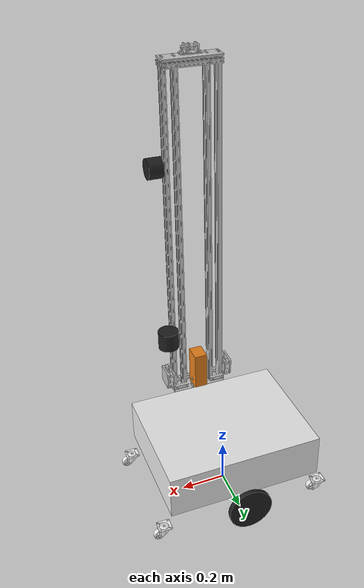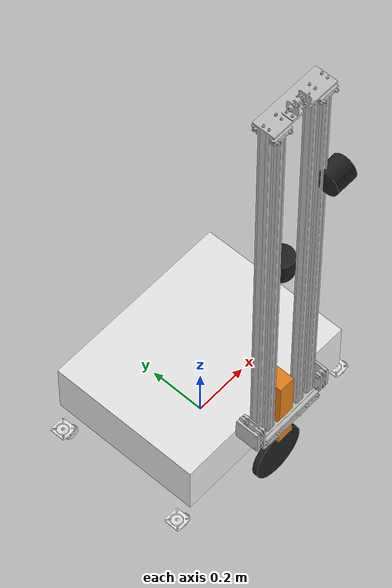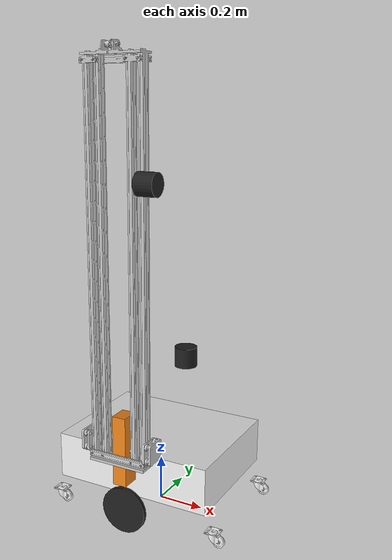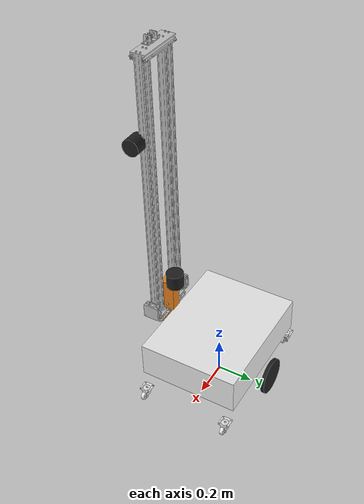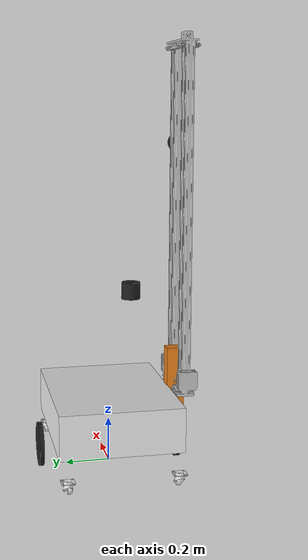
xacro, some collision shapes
<?xml version="1.0" ?>
<robot name="paint_bot" xmlns:xacro="http://ros.org/wiki/xacro">

    <!-- Args -->
    <xacro:arg name="sim" default="classic"/>
    <xacro:property name="sim" value="$(arg sim)"/>

    <xacro:arg name="attach_gantry" default="true"/>
    <xacro:arg name="attach_sensors" default="false"/>

    <!-- Include Modular URDF Files -->
    <xacro:include filename="$(find paint_bot_description)/urdf/paint_bot_color.xacro"/>
    <xacro:include filename="$(find paint_bot_description)/urdf/base.xacro"/>
    <xacro:include filename="$(find paint_bot_description)/urdf/diff_drive.xacro"/>
    <xacro:include filename="$(find paint_bot_description)/urdf/caster.xacro"/>
    <xacro:include filename="$(find paint_bot_description)/urdf/gantry.xacro"/>
    <xacro:include filename="$(find paint_bot_description)/urdf/paint_bot_gazebo.xacro"/>
    <xacro:include filename="$(find paint_bot_description)/urdf/paint_bot_transmission.xacro"/>
    <xacro:include filename="$(find paint_bot_description)/urdf/lidar.xacro"/>

    <!-- Instantiate Driven Wheels with firm ground contact -->
    <xacro:driven_wheel name="left"  parent="base_link" xyz="0 0.288 -0.010" rpy="0 0 0" y_reflect="1"/>
    <xacro:driven_wheel name="right" parent="base_link" xyz="0 -0.288 -0.010" rpy="0 0 0" y_reflect="-1"/>

    <!-- Instantiate Casters balanced at exact ground contact height -->
    <xacro:caster name="front_right" parent="base_link" plate_xyz="0.375 -0.243 -0.040" wheel_xyz="0.025 0 -0.040"/>
    <xacro:caster name="front_left"  parent="base_link" plate_xyz="0.375 0.243 -0.040"  wheel_xyz="0.025 0 -0.040"/>
    <xacro:caster name="rear_right"  parent="base_link" plate_xyz="-0.375 -0.243 -0.040" wheel_xyz="0.025 0 -0.040"/>
    <xacro:caster name="rear_left"   parent="base_link" plate_xyz="-0.375 0.243 -0.040"  wheel_xyz="0.025 0 -0.040"/>

    <!-- Instantiate Gantry (Prismatic height axis + spray gun) -->
    <xacro:if value="$(arg attach_gantry)">
        <xacro:gantry parent="base_link" xyz="0 -0.312 0.267" rpy="0 0 -1.5708"/>
    </xacro:if>

    <!-- Instantiate Sensors (IMU, Lidars, Depth Camera, Ultrasonics) -->
    <xacro:if value="$(arg attach_sensors)">
        <xacro:sensors parent="base_link"/>
    </xacro:if>

    <!-- Gazebo Transmission Integration -->
    <xacro:paint_bot_transmission
        left_wheel="left_wheel_joint"
        right_wheel="right_wheel_joint"
        height_paint_position="zAxis_joint"
        paint_spray_gun="wrist_joint"
       />

    <!-- Gazebo Classic Plugins for Painting Robot Simulation -->
    <gazebo>
        <!-- Differential Drive for Painting Robot Wheels -->
        <plugin name="diff_drive_controller" filename="libgazebo_ros_diff_drive.so">
            <update_rate>50</update_rate>
            <left_joint>left_wheel_joint</left_joint>
            <right_joint>right_wheel_joint</right_joint>
            <wheel_separation>0.576</wheel_separation>
            <wheel_diameter>0.20</wheel_diameter>
            <max_wheel_torque>500.0</max_wheel_torque>
            <max_wheel_acceleration>10.0</max_wheel_acceleration>
            <publish_odom>true</publish_odom>
            <publish_odom_tf>true</publish_odom_tf>
            <publish_wheel_tf>true</publish_wheel_tf>
            <odometry_frame>odom</odometry_frame>
            <robot_base_frame>base_footprint</robot_base_frame>
            <ros>
                <remapping>cmd_vel:=/paint_bot/cmd_vel</remapping>
                <remapping>odom:=/paint_bot/odom</remapping>
            </ros>
        </plugin>

        <!-- Joint State Publisher for all Painting Robot joints -->
        <plugin name="joint_state_publisher" filename="libgazebo_ros_joint_state_publisher.so">
            <update_rate>50</update_rate>
            <joint_name>left_wheel_joint</joint_name>
            <joint_name>right_wheel_joint</joint_name>
            <joint_name>extension_joint</joint_name>
            <joint_name>zAxis_joint</joint_name>
            <joint_name>wrist_joint</joint_name>
        </plugin>

        <!-- Prismatic Gantry Joint Pose Trajectory Controller -->
        <plugin name="gantry_pose_controller" filename="libgazebo_ros_joint_pose_trajectory.so">
            <update_rate>50</update_rate>
            <ros>
                <namespace>/paint_axis_controller</namespace>
                <remapping>set_joint_trajectory:=joint_trajectory</remapping>
            </ros>
        </plugin>
    </gazebo>

     <joint name="imu_joint" type="fixed">
        <parent link="base_link"/>
        <child link="imu_link"/>
        <origin xyz="0 0 0.01" rpy="0 0 0"/>
    </joint>

    <link name="imu_link">
        <visual>
            <geometry>
                <box size="0.01 0.01 0.01"/>
            </geometry>
            <material name="black"/>
        </visual>
    </link>

    <gazebo reference="imu_link">
        <sensor name="imu_sensor" type="imu">
            <always_on>true</always_on>
            <update_rate>50</update_rate>
            <imu>
                <angular_velocity>
                    <x><noise type="gaussian"><mean>0.0</mean><stddev>2e-4</stddev></noise></x>
                    <y><noise type="gaussian"><mean>0.0</mean><stddev>2e-4</stddev></noise></y>
                    <z><noise type="gaussian"><mean>0.0</mean><stddev>2e-4</stddev></noise></z>
                </angular_velocity>
                <linear_acceleration>
                    <x><noise type="gaussian"><mean>0.0</mean><stddev>1.7e-2</stddev></noise></x>
                    <y><noise type="gaussian"><mean>0.0</mean><stddev>1.7e-2</stddev></noise></y>
                    <z><noise type="gaussian"><mean>0.0</mean><stddev>1.7e-2</stddev></noise></z>
                </linear_acceleration>
            </imu>
            <plugin name="imu_plugin" filename="libgazebo_ros_imu_sensor.so">
                <ros>
                    <remapping>~/out:=imu/out</remapping>
                </ros>
                <initial_orientation_as_reference>false</initial_orientation_as_reference>
            </plugin>
        </sensor>
    </gazebo>

</robot>

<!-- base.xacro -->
<robot name="paint_bot" xmlns:xacro="http://ros.org/wiki/xacro">
    <!-- Base Footprint Link -->
    <link name="base_footprint"/>

    <!-- Base Footprint Joint -->
    <joint name="base_joint" type="fixed">
        <parent link="base_footprint"/>
        <child link="base_link"/>
        <origin xyz="0.0 0.0 0.11" rpy="0 0 0"/>
    </joint>

    <!-- Base Link -->
    <link name="base_link">
        <inertial>
            <!-- Adjusted Y COM (+0.025) to act as a virtual counterweight for the off-center gantry payload -->
            <origin xyz="-0.013481 0.025 0.19404"
                    rpy="0 0 0" />
            <mass value="50" />
            <inertia ixx="1.6079"
                    ixy="0.0030591"
                    ixz="0.06246"
                    iyy="1.7294"
                    iyz="-0.005081"
                    izz="2.6836" />
        </inertial>
        <visual>
            <origin xyz="0 0 0" rpy="0 0 0" />
            <geometry>
                <mesh filename="package://paint_bot_description/meshes/base_link.STL" />
            </geometry>
            <material name="white"/>
        </visual>
        <collision>
            <origin xyz="0 0 0.14" rpy="0 0 0"/>
            <geometry>
                <box size="0.7 0.55 0.20"/>
            </geometry>
        </collision>
    </link>

    <!-- Model Colors -->
    <!-- Base Link -->
    <gazebo reference="base_link">
        <material>Gazebo/White</material>
    </gazebo>
</robot>

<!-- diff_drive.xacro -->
<robot xmlns:xacro="http://www.ros.org/wiki/xacro">

    <xacro:macro name="driven_wheel" params="name parent xyz rpy y_reflect">

        <link name="${name}_wheel_link">
            <inertial>
                <!-- Y offset reflects left/right asymmetry -->
                <origin xyz="0.0 ${y_reflect * 0.025001} 0.0" rpy="0 0 0"/>
                <mass value="3"/>
                <!-- Physically realistic inertia values for 3kg wheel of 0.1m radius -->
                <inertia ixx="0.0075" ixy="0.0" ixz="0.0"
                         iyy="0.015" iyz="0.0"
                         izz="0.0075"/>
            </inertial>

            <visual>
                <origin xyz="0 ${y_reflect * 0.03} 0" rpy="${y_reflect * 1.5708} 0 0"/>
                <geometry>
                    <cylinder radius="0.10" length="0.02"/>
                </geometry>
                <material name="black"/>
            </visual>

            <!-- Sphere collision for stable physics simulation in Gazebo Classic ODE -->
            <collision>
                <origin xyz="0 0 0" rpy="0 0 0"/>
                <geometry>
                    <sphere radius="0.10"/>
                </geometry>
            </collision>
        </link>

        <joint name="${name}_wheel_joint" type="continuous">
            <origin xyz="${xyz}" rpy="${rpy}"/>
            <parent link="${parent}"/>
            <child link="${name}_wheel_link"/>
            <axis xyz="0 1 0"/>
            <dynamics damping="0.1" friction="0.0"/>
            <!-- Explicit effort limit (500.0 Nm) to prevent motor sluggishness in Gazebo Classic -->
            <limit effort="500.0" velocity="10.0"/>
        </joint>

        <!-- Gazebo properties for driven traction wheels -->
        <gazebo reference="${name}_wheel_link">
            <material>Gazebo/Black</material>
            <mu1>10.0</mu1>
            <mu2>10.0</mu2>
            <kp>1000000.0</kp>
            <kd>1.0</kd>
            <minDepth>0.001</minDepth>
            <maxVel>1.0</maxVel>
        </gazebo>

    </xacro:macro>

</robot>

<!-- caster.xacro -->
<robot xmlns:xacro="http://www.ros.org/wiki/xacro">

    <xacro:macro name="caster" params="name parent plate_xyz wheel_xyz">

        <!-- Plate link -->
        <link name="${name}_castor_plate_link">
            <inertial>
                <origin xyz="0.0039921 0.00012704 -0.012856" rpy="0 0 0"/>
                <mass value="0.5"/>
                <!-- Low inertia to allow immediate swiveling response to steering torque -->
                <inertia ixx="0.0001" ixy="0.0" ixz="0.0"
                         iyy="0.0001" iyz="0.0"
                         izz="0.0001"/>
            </inertial>
            <visual>
                <origin xyz="0 0 0" rpy="0 0 0"/>
                <geometry>
                    <mesh filename="package://paint_bot_description/meshes/${name}_castor_plate_link.STL"/>
                </geometry>
                <material name="">
                    <color rgba="0.89412 0.89412 0.89412 1"/>
                </material>
            </visual>
        </link>

        <!-- Fixed plate joint to eliminate solver lag -->
        <joint name="${name}_castor_plate_joint" type="fixed">
            <origin xyz="${plate_xyz}" rpy="0 0 0"/>
            <parent link="${parent}"/>
            <child link="${name}_castor_plate_link"/>
        </joint>

        <!-- Wheel link -->
        <link name="${name}_castor_wheel_link">
            <inertial>
                <origin xyz="0.0 0.0 0.0" rpy="0 0 0"/>
                <mass value="1.0"/>
                <inertia ixx="0.0001" ixy="0.0" ixz="0.0"
                         iyy="0.0001" iyz="0.0"
                         izz="0.0001"/>
            </inertial>
            <visual>
                <origin xyz="0 0 0" rpy="0 0 0"/>
                <geometry>
                    <mesh filename="package://paint_bot_description/meshes/${name}_castor_wheel_link.STL"/>
                </geometry>
                <material name="">
                    <color rgba="0.89412 0.89412 0.89412 1"/>
                </material>
            </visual>

            <!-- Sphere collision geometry for contact point stability -->
            <collision>
                <origin xyz="0 0 0" rpy="0 0 0"/>
                <geometry>
                    <sphere radius="0.03"/>
                </geometry>
            </collision>
        </link>

        <!-- Continuous wheel joint to allow rolling and eliminate dragging -->
        <joint name="${name}_castor_wheel_joint" type="continuous">
            <origin xyz="${wheel_xyz}" rpy="0 0 0"/>
            <parent link="${name}_castor_plate_link"/>
            <child link="${name}_castor_wheel_link"/>
            <axis xyz="0 1 0"/>
        </joint>

        <!-- Caster wheel Gazebo contact properties (frictionless omnidirectional sliding ball) -->
        <gazebo reference="${name}_castor_wheel_link">
            <material>Gazebo/DarkGrey</material>
            <mu1>0.0</mu1>
            <mu2>0.0</mu2>
            <kp>1000000.0</kp>
            <kd>1.0</kd>
            <minDepth>0.001</minDepth>
        </gazebo>

        <gazebo reference="${name}_castor_plate_link">
            <material>Gazebo/Grey</material>
        </gazebo>

    </xacro:macro>

</robot>

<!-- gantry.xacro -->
<robot xmlns:xacro="http://www.ros.org/wiki/xacro">

    <xacro:macro name="gantry" params="parent xyz rpy">

        <!-- Auxiliary Extension Link                                        -->
        <!-- This is the outer gantry extension carriage (circled in red).  -->
        <!-- It is a separate prismatic stage mounted on the base frame.     -->
        <!-- It ONLY moves when the painting target exceeds the normal       -->
        <!-- gantry's 1.2 m reach. During normal painting it stays at 0.0.  -->
        <link name="extension_link">
            <inertial>
                <origin xyz="0 0 0.1" rpy="0 0 0" />
                <mass value="1.5" />
                <inertia ixx="0.02"
                        ixy="0"
                        ixz="0"
                        iyy="0.02"
                        iyz="0"
                        izz="0.005" />
            </inertial>
            <visual>
                <origin xyz="0 0 0" rpy="0 0 0" />
                <geometry>
                    <!-- Represent extension carriage as a thin box -->
                    <box size="0.08 0.06 0.30" />
                </geometry>
                <material name="ext_orange">
                    <color rgba="0.9 0.5 0.1 1" />
                </material>
            </visual>
            <collision>
                <origin xyz="0 0 0.1" rpy="0 0 0" />
                <geometry>
                    <box size="0.08 0.06 0.30" />
                </geometry>
            </collision>
        </link>

        <!-- Auxiliary Extension Joint (independent prismatic stage, +Z axis) -->
        <!-- This joint moves ONLY when strip_z_max > z_max_m (normal gantry limit). -->
        <!-- It must NOT be coupled to zAxis_joint or wrist_joint motion.             -->
        <joint name="extension_joint" type="prismatic">
            <origin xyz="${xyz}" rpy="${rpy}" />
            <parent link="${parent}" />
            <child link="extension_link" />
            <axis xyz="0 0 1" />
            <limit lower="0.0"
                   upper="0.6"
                   effort="400"
                   velocity="0.5" />
            <dynamics damping="10.0" friction="2.0" />
        </joint>

        <!-- Height Adj Link — child of extension_link so it benefits from extra reach -->
        <link name="height_adj_link">
            <inertial>
                <origin xyz="0.022628 -0.00010699 0.64618" rpy="0 0 0" />
                <mass value="2" />
                <inertia ixx="0.41681"
                        ixy="-6.9684E-08"
                        ixz="5.4046E-07"
                        iyy="0.41486"
                        iyz="9.5071E-14"
                        izz="0.0033962" />
            </inertial>
            <visual>
                <origin xyz="0 0 0" rpy="0 0 0" />
                <geometry>
                    <mesh filename="package://paint_bot_description/meshes/height_adj_link.STL" />
                </geometry>
                <material name="height_adj_gray">
                    <color rgba="0.75294 0.75294 0.75294 1" />
                </material>
            </visual>
            <!-- Tiny collision sphere to prevent ground dragging and avoid Gazebo segfault -->
            <collision>
                <origin xyz="0 0 0.6" rpy="0 0 0" />
                <geometry>
                    <sphere radius="0.001" />
                </geometry>
            </collision>
        </link>

        <!-- Height Adj Joint — parent is now extension_link so combined reach =
             extension_joint position + zAxis_joint position (up to 1.2 m + 0.6 m = 1.8 m) -->
        <joint name="zAxis_joint" type="prismatic">
            <origin xyz="0 0 0" rpy="0 0 0" />
            <parent link="extension_link" />
            <child link="height_adj_link" />
            <axis xyz="0 0 1" />
            <limit lower="0"
                upper="1.2"
                effort="500"
                velocity="2.0" />
        </joint>

        <!-- Paint Spray Gun Link -->
        <link name="paint_spray_gun_link">
            <inertial>
                <origin xyz="0 0 0" rpy="0 0 0" />
                <mass value="1" />
                <inertia ixx="4.2e-4"
                        ixy="0"
                        ixz="0"
                        iyy="3.5e-3"
                        iyz="0"
                        izz="3.5e-3" />
            </inertial>
            <visual>
                <origin xyz="0 0 0" rpy="0 0 0" />
                <geometry>
                    <mesh filename="package://paint_bot_description/meshes/paint_spray_gun_link.STL" />
                </geometry>
                <material name="white"/>
            </visual>
            <!-- Tiny collision sphere to prevent ground dragging and avoid Gazebo segfault -->
            <collision>
                <origin xyz="0 0 0" rpy="0 0 0" />
                <geometry>
                    <sphere radius="0.001" />
                </geometry>
            </collision>
        </link>

        <!-- Paint Spray Gun Joint (Wrist Pitch Servo) -->
        <joint name="wrist_joint" type="revolute">
            <origin xyz="0.0965 0 0.033" rpy="0 0 0" />
            <parent link="height_adj_link" />
            <child link="paint_spray_gun_link" />
            <axis xyz="0 1 0" />
            <limit lower="-0.8"
                upper="0.8"
                effort="50"
                velocity="1.0" />
        </joint>

        <!-- Gazebo joint properties for implicit solver stability to prevent payload vibration -->
        <gazebo reference="extension_joint">
            <implicitSpringDamper>true</implicitSpringDamper>
        </gazebo>
        <gazebo reference="zAxis_joint">
            <implicitSpringDamper>true</implicitSpringDamper>
        </gazebo>
        <gazebo reference="wrist_joint">
            <implicitSpringDamper>true</implicitSpringDamper>
        </gazebo>

        <!-- Gazebo properties for extension link -->
        <gazebo reference="extension_link">
            <material>Gazebo/Orange</material>
            <gravity>0</gravity>
        </gazebo>

        <!-- Gazebo properties for Gantry -->
        <gazebo reference="height_adj_link">
            <material>Gazebo/Grey</material>
            <gravity>0</gravity>
        </gazebo>

        <gazebo reference="paint_spray_gun_link">
            <material>Gazebo/Black</material>
            <gravity>0</gravity>
        </gazebo>

    </xacro:macro>

</robot>

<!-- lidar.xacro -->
<robot xmlns:xacro="http://www.ros.org/wiki/xacro">

<!-- Lidar Link -->
    <link name="lidar_link">

        <visual>
            <origin xyz="0 0 0" rpy="0 0 0" />
            <geometry>
                <cylinder radius="0.045" length="0.08"/>
            </geometry>
            <material name="light_black"/>
        </visual>

        <collision>
        <geometry>
            <cylinder radius="0.05" length="0.04"/>
        </geometry>
        </collision>
    </link>

    <!-- Lidar Joint -->
    <joint name="lidar_joint" type="fixed">
        <origin xyz="0.195 -0.147 0.65" rpy="0 0 3.14159" />
        <parent link="base_link" />
        <child link="lidar_link" />
        <axis xyz="0 0 0" />
    </joint>

    <gazebo reference="lidar_link">
        <material>Gazebo/Black</material>

        <sensor name="laser" type="ray">
            <pose> 0 0 0 0 0 0 </pose>
            <visualize>true</visualize>
            <update_rate>10</update_rate>
            <ray>
                <scan>
                    <horizontal>
                        <samples>720</samples>
                        <min_angle>-3.141593</min_angle>
                        <max_angle>3.141593</max_angle>

                    </horizontal>
                </scan>
                <range>
                <min>0.120000</min>
                <max>12.0</max>
                <resolution>0.015000</resolution>
                 </range>
                <noise>
                    <type>gaussian</type>
                    <mean>0.0</mean>
                    <stddev>0.01</stddev>
                </noise>
            </ray>
            <plugin name="laser_controller" filename="libgazebo_ros_ray_sensor.so">
                <ros>
                <remapping>~/out:=/scan</remapping>
                </ros>
                <output_type>sensor_msgs/LaserScan</output_type>
                <frame_name>lidar_link</frame_name>
            </plugin>
        </sensor>
    </gazebo>

    <!-- Vertical Wall Scanning LiDAR (Mounted on outer flank of other gantry)    -->
    <link name="laser">
        <inertial>
            <origin xyz="0 0 0" rpy="0 0 0"/>
            <mass value="0.2"/>
            <inertia ixx="0.0002" ixy="0" ixz="0" iyy="0.0002" iyz="0" izz="0.0002"/>
        </inertial>
        <visual>
            <origin xyz="0 0 0" rpy="0 0 0" />
            <geometry>
                <cylinder radius="0.045" length="0.08"/>
            </geometry>
            <material name="light_black"/>
        </visual>
        <collision>
            <geometry>
                <cylinder radius="0.05" length="0.04"/>
            </geometry>
        </collision>
    </link>

    <joint name="vertical_lidar_joint" type="fixed">
        <origin xyz="0.15 -0.365 1.35" rpy="0.0 -1.57079632679 0.0" />
        <parent link="base_link" />
        <child link="laser" />
    </joint>

    <gazebo reference="laser">
        <material>Gazebo/Blue</material>
        <sensor name="vertical_laser" type="ray">
            <pose>0 0 0 0 0 0</pose>
            <visualize>true</visualize>
            <update_rate>15</update_rate>
            <ray>
                <scan>
                    <horizontal>
                        <samples>720</samples>
                        <resolution>1</resolution>
                        <min_angle>-3.141593</min_angle>
                        <max_angle>3.141593</max_angle>
                    </horizontal>
                </scan>
                <range>
                    <min>0.08</min>
                    <max>16.0</max>
                    <resolution>0.01</resolution>
                </range>
                <noise>
                    <type>gaussian</type>
                    <mean>0.0</mean>
                    <stddev>0.003</stddev>
                </noise>
            </ray>
            <plugin name="vertical_laser_controller" filename="libgazebo_ros_ray_sensor.so">
                <ros>
                    <remapping>~/out:=/wall_scan</remapping>
                </ros>
                <output_type>sensor_msgs/LaserScan</output_type>
                <frame_name>laser</frame_name>
            </plugin>
        </sensor>
    </gazebo>
</robot>
